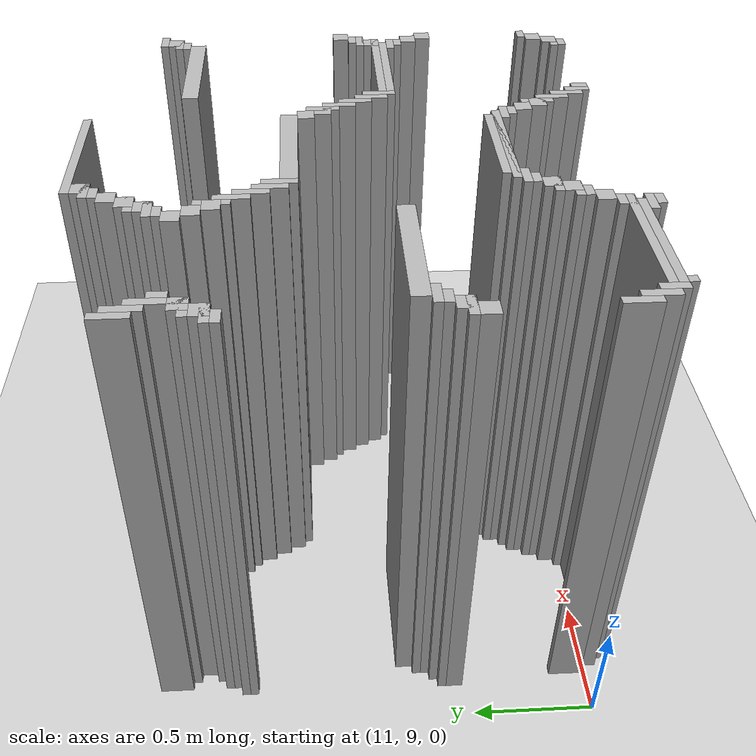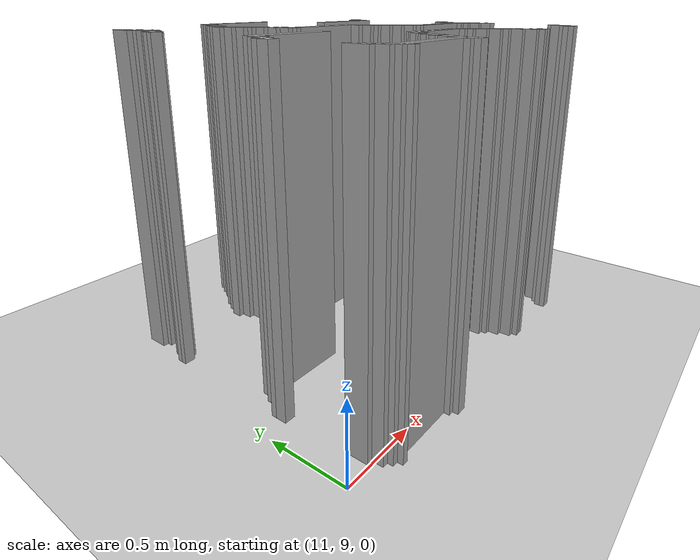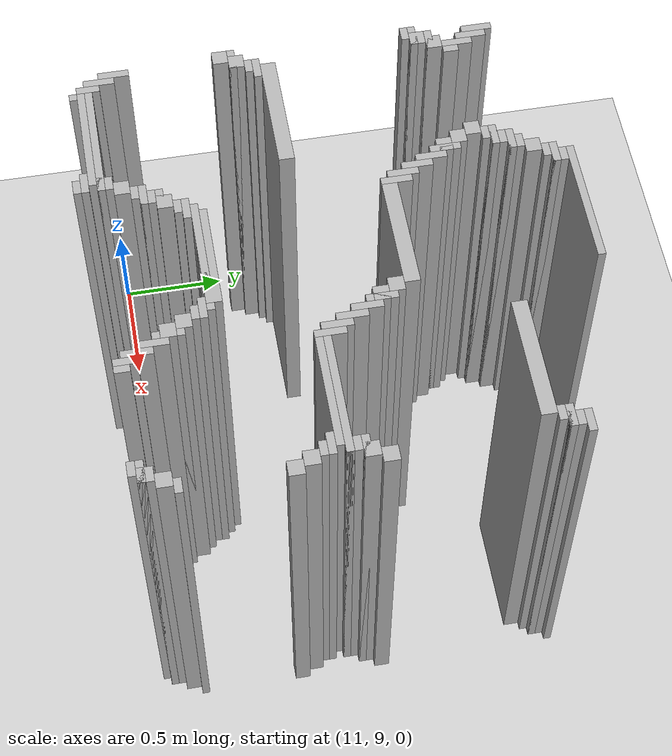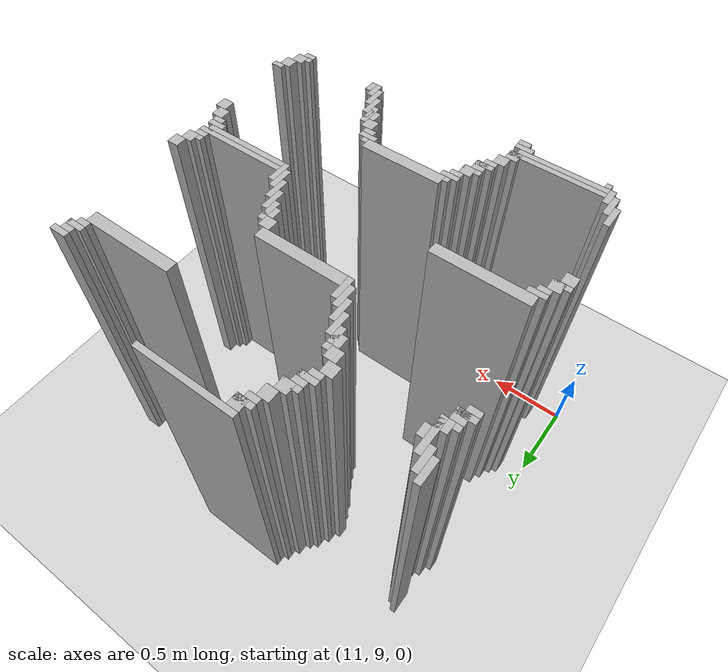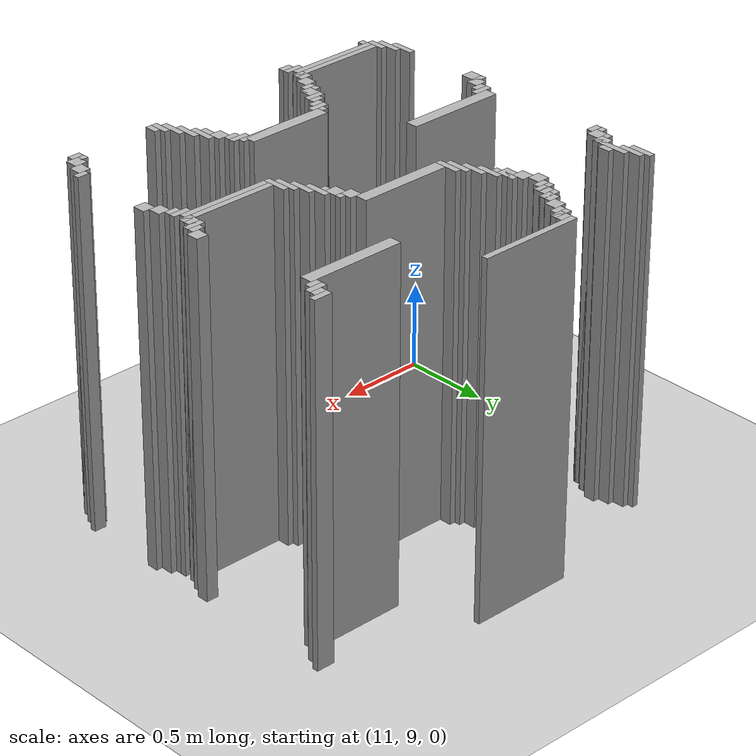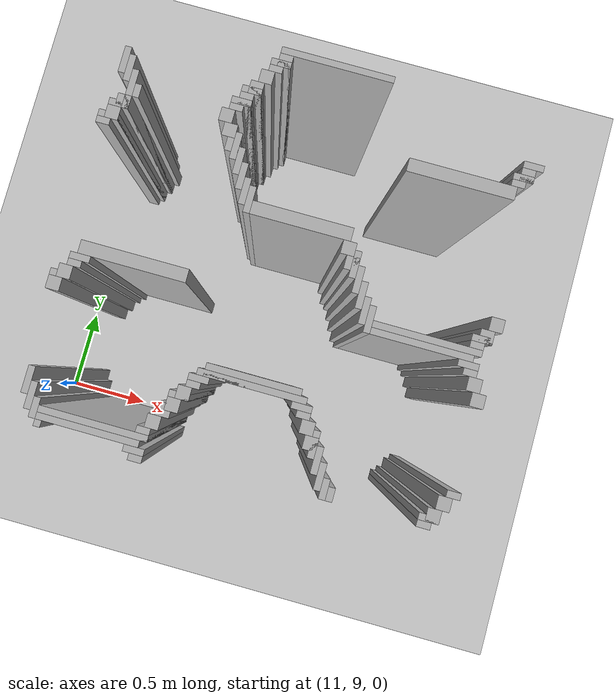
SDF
<sdf version="1.6">
 <world name="slam_world">
  <model name="ground_plane">
   <static>true</static>
   <link name="link">
    <collision name="collision">
     <geometry><plane><normal>0 0 1</normal><size>100 100</size></plane></geometry>
    </collision>
    <visual name="visual">
     <geometry><plane><normal>0 0 1</normal><size>100 100</size></plane></geometry>
     <material>
      <ambient>0.8 0.8 0.8 1</ambient>
      <diffuse>0.8 0.8 0.8 1</diffuse>
      <specular>0.8 0.8 0.8 1</specular>
     </material>
    </visual>
   </link>
  </model>
  <model name="wall_2194">
   <static>true</static>
   <pose>12.233178654292344 11.01508120649652 1.0 0 0 0</pose>
   <link name="link">
    <collision name="collision">
     <geometry><box><size>0.5916473317865429 0.03480278422273782 2.0</size></box></geometry>
    </collision>
    <visual name="visual">
     <geometry><box><size>0.5916473317865429 0.03480278422273782 2.0</size></box></geometry>
     <material><ambient>0.5 0.5 0.5 1</ambient><diffuse>0.7 0.7 0.7 1</diffuse></material>
    </visual>
   </link>
  </model>
  <model name="wall_2206">
   <static>true</static>
   <pose>11.97215777262181 10.962877030162412 1.0 0 0 0</pose>
   <link name="link">
    <collision name="collision">
     <geometry><box><size>0.06960556844547564 0.06960556844547564 2.0</size></box></geometry>
    </collision>
    <visual name="visual">
     <geometry><box><size>0.06960556844547564 0.06960556844547564 2.0</size></box></geometry>
     <material><ambient>0.5 0.5 0.5 1</ambient><diffuse>0.7 0.7 0.7 1</diffuse></material>
    </visual>
   </link>
  </model>
  <model name="wall_2218">
   <static>true</static>
   <pose>11.95475638051044 10.945475638051043 1.0 0 0 0</pose>
   <link name="link">
    <collision name="collision">
     <geometry><box><size>0.10440835266821345 0.03480278422273782 2.0</size></box></geometry>
    </collision>
    <visual name="visual">
     <geometry><box><size>0.10440835266821345 0.03480278422273782 2.0</size></box></geometry>
     <material><ambient>0.5 0.5 0.5 1</ambient><diffuse>0.7 0.7 0.7 1</diffuse></material>
    </visual>
   </link>
  </model>
  <model name="wall_2225">
   <static>true</static>
   <pose>11.937354988399072 10.910672853828306 1.0 0 0 0</pose>
   <link name="link">
    <collision name="collision">
     <geometry><box><size>0.06960556844547564 0.03480278422273782 2.0</size></box></geometry>
    </collision>
    <visual name="visual">
     <geometry><box><size>0.06960556844547564 0.03480278422273782 2.0</size></box></geometry>
     <material><ambient>0.5 0.5 0.5 1</ambient><diffuse>0.7 0.7 0.7 1</diffuse></material>
    </visual>
   </link>
  </model>
  <model name="wall_2237">
   <static>true</static>
   <pose>11.902552204176333 10.8584686774942 1.0 0 0 0</pose>
   <link name="link">
    <collision name="collision">
     <geometry><box><size>0.06960556844547564 0.06960556844547564 2.0</size></box></geometry>
    </collision>
    <visual name="visual">
     <geometry><box><size>0.06960556844547564 0.06960556844547564 2.0</size></box></geometry>
     <material><ambient>0.5 0.5 0.5 1</ambient><diffuse>0.7 0.7 0.7 1</diffuse></material>
    </visual>
   </link>
  </model>
  <model name="wall_2248">
   <static>true</static>
   <pose>11.189095127610209 10.754060324825986 1.0 0 0 0</pose>
   <link name="link">
    <collision name="collision">
     <geometry><box><size>0.03480278422273782 0.13921113689095127 2.0</size></box></geometry>
    </collision>
    <visual name="visual">
     <geometry><box><size>0.03480278422273782 0.13921113689095127 2.0</size></box></geometry>
     <material><ambient>0.5 0.5 0.5 1</ambient><diffuse>0.7 0.7 0.7 1</diffuse></material>
    </visual>
   </link>
  </model>
  <model name="wall_2249">
   <static>true</static>
   <pose>11.867749419953595 10.788863109048723 1.0 0 0 0</pose>
   <link name="link">
    <collision name="collision">
     <geometry><box><size>0.06960556844547564 0.06960556844547564 2.0</size></box></geometry>
    </collision>
    <visual name="visual">
     <geometry><box><size>0.06960556844547564 0.06960556844547564 2.0</size></box></geometry>
     <material><ambient>0.5 0.5 0.5 1</ambient><diffuse>0.7 0.7 0.7 1</diffuse></material>
    </visual>
   </link>
  </model>
  <model name="wall_2260">
   <static>true</static>
   <pose>11.223897911832946 10.719257540603248 1.0 0 0 0</pose>
   <link name="link">
    <collision name="collision">
     <geometry><box><size>0.03480278422273782 0.13921113689095127 2.0</size></box></geometry>
    </collision>
    <visual name="visual">
     <geometry><box><size>0.03480278422273782 0.13921113689095127 2.0</size></box></geometry>
     <material><ambient>0.5 0.5 0.5 1</ambient><diffuse>0.7 0.7 0.7 1</diffuse></material>
    </visual>
   </link>
  </model>
  <model name="wall_2261">
   <static>true</static>
   <pose>11.850348027842227 10.771461716937354 1.0 0 0 0</pose>
   <link name="link">
    <collision name="collision">
     <geometry><box><size>0.10440835266821345 0.03480278422273782 2.0</size></box></geometry>
    </collision>
    <visual name="visual">
     <geometry><box><size>0.10440835266821345 0.03480278422273782 2.0</size></box></geometry>
     <material><ambient>0.5 0.5 0.5 1</ambient><diffuse>0.7 0.7 0.7 1</diffuse></material>
    </visual>
   </link>
  </model>
  <model name="wall_2262">
   <static>true</static>
   <pose>13.312064965197216 10.771461716937354 1.0 0 0 0</pose>
   <link name="link">
    <collision name="collision">
     <geometry><box><size>0.10440835266821345 0.03480278422273782 2.0</size></box></geometry>
    </collision>
    <visual name="visual">
     <geometry><box><size>0.10440835266821345 0.03480278422273782 2.0</size></box></geometry>
     <material><ambient>0.5 0.5 0.5 1</ambient><diffuse>0.7 0.7 0.7 1</diffuse></material>
    </visual>
   </link>
  </model>
  <model name="wall_2267">
   <static>true</static>
   <pose>11.832946635730858 10.719257540603248 1.0 0 0 0</pose>
   <link name="link">
    <collision name="collision">
     <geometry><box><size>0.06960556844547564 0.06960556844547564 2.0</size></box></geometry>
    </collision>
    <visual name="visual">
     <geometry><box><size>0.06960556844547564 0.06960556844547564 2.0</size></box></geometry>
     <material><ambient>0.5 0.5 0.5 1</ambient><diffuse>0.7 0.7 0.7 1</diffuse></material>
    </visual>
   </link>
  </model>
  <model name="wall_2268">
   <static>true</static>
   <pose>13.294663573085847 10.719257540603248 1.0 0 0 0</pose>
   <link name="link">
    <collision name="collision">
     <geometry><box><size>0.06960556844547564 0.06960556844547564 2.0</size></box></geometry>
    </collision>
    <visual name="visual">
     <geometry><box><size>0.06960556844547564 0.06960556844547564 2.0</size></box></geometry>
     <material><ambient>0.5 0.5 0.5 1</ambient><diffuse>0.7 0.7 0.7 1</diffuse></material>
    </visual>
   </link>
  </model>
  <model name="wall_2278">
   <static>true</static>
   <pose>11.258700696055683 10.614849187935034 1.0 0 0 0</pose>
   <link name="link">
    <collision name="collision">
     <geometry><box><size>0.03480278422273782 0.2088167053364269 2.0</size></box></geometry>
    </collision>
    <visual name="visual">
     <geometry><box><size>0.03480278422273782 0.2088167053364269 2.0</size></box></geometry>
     <material><ambient>0.5 0.5 0.5 1</ambient><diffuse>0.7 0.7 0.7 1</diffuse></material>
    </visual>
   </link>
  </model>
  <model name="wall_2279">
   <static>true</static>
   <pose>11.81554524361949 10.70185614849188 1.0 0 0 0</pose>
   <link name="link">
    <collision name="collision">
     <geometry><box><size>0.10440835266821345 0.03480278422273782 2.0</size></box></geometry>
    </collision>
    <visual name="visual">
     <geometry><box><size>0.10440835266821345 0.03480278422273782 2.0</size></box></geometry>
     <material><ambient>0.5 0.5 0.5 1</ambient><diffuse>0.7 0.7 0.7 1</diffuse></material>
    </visual>
   </link>
  </model>
  <model name="wall_2280">
   <static>true</static>
   <pose>13.277262180974477 10.70185614849188 1.0 0 0 0</pose>
   <link name="link">
    <collision name="collision">
     <geometry><box><size>0.10440835266821345 0.03480278422273782 2.0</size></box></geometry>
    </collision>
    <visual name="visual">
     <geometry><box><size>0.10440835266821345 0.03480278422273782 2.0</size></box></geometry>
     <material><ambient>0.5 0.5 0.5 1</ambient><diffuse>0.7 0.7 0.7 1</diffuse></material>
    </visual>
   </link>
  </model>
  <model name="wall_2285">
   <static>true</static>
   <pose>11.79814385150812 10.66705336426914 1.0 0 0 0</pose>
   <link name="link">
    <collision name="collision">
     <geometry><box><size>0.06960556844547564 0.03480278422273782 2.0</size></box></geometry>
    </collision>
    <visual name="visual">
     <geometry><box><size>0.06960556844547564 0.03480278422273782 2.0</size></box></geometry>
     <material><ambient>0.5 0.5 0.5 1</ambient><diffuse>0.7 0.7 0.7 1</diffuse></material>
    </visual>
   </link>
  </model>
  <model name="wall_2286">
   <static>true</static>
   <pose>13.259860788863108 10.66705336426914 1.0 0 0 0</pose>
   <link name="link">
    <collision name="collision">
     <geometry><box><size>0.06960556844547564 0.03480278422273782 2.0</size></box></geometry>
    </collision>
    <visual name="visual">
     <geometry><box><size>0.06960556844547564 0.03480278422273782 2.0</size></box></geometry>
     <material><ambient>0.5 0.5 0.5 1</ambient><diffuse>0.7 0.7 0.7 1</diffuse></material>
    </visual>
   </link>
  </model>
  <model name="wall_2297">
   <static>true</static>
   <pose>11.293503480278423 10.614849187935034 1.0 0 0 0</pose>
   <link name="link">
    <collision name="collision">
     <geometry><box><size>0.03480278422273782 0.06960556844547564 2.0</size></box></geometry>
    </collision>
    <visual name="visual">
     <geometry><box><size>0.03480278422273782 0.06960556844547564 2.0</size></box></geometry>
     <material><ambient>0.5 0.5 0.5 1</ambient><diffuse>0.7 0.7 0.7 1</diffuse></material>
    </visual>
   </link>
  </model>
  <model name="wall_2298">
   <static>true</static>
   <pose>11.763341067285383 10.614849187935034 1.0 0 0 0</pose>
   <link name="link">
    <collision name="collision">
     <geometry><box><size>0.06960556844547564 0.06960556844547564 2.0</size></box></geometry>
    </collision>
    <visual name="visual">
     <geometry><box><size>0.06960556844547564 0.06960556844547564 2.0</size></box></geometry>
     <material><ambient>0.5 0.5 0.5 1</ambient><diffuse>0.7 0.7 0.7 1</diffuse></material>
    </visual>
   </link>
  </model>
  <model name="wall_2299">
   <static>true</static>
   <pose>12.981438515081207 10.614849187935034 1.0 0 0 0</pose>
   <link name="link">
    <collision name="collision">
     <geometry><box><size>0.5568445475638051 0.06960556844547564 2.0</size></box></geometry>
    </collision>
    <visual name="visual">
     <geometry><box><size>0.5568445475638051 0.06960556844547564 2.0</size></box></geometry>
     <material><ambient>0.5 0.5 0.5 1</ambient><diffuse>0.7 0.7 0.7 1</diffuse></material>
    </visual>
   </link>
  </model>
  <model name="wall_2309">
   <static>true</static>
   <pose>11.241299303944315 10.54524361948956 1.0 0 0 0</pose>
   <link name="link">
    <collision name="collision">
     <geometry><box><size>0.06960556844547564 0.06960556844547564 2.0</size></box></geometry>
    </collision>
    <visual name="visual">
     <geometry><box><size>0.06960556844547564 0.06960556844547564 2.0</size></box></geometry>
     <material><ambient>0.5 0.5 0.5 1</ambient><diffuse>0.7 0.7 0.7 1</diffuse></material>
    </visual>
   </link>
  </model>
  <model name="wall_2310">
   <static>true</static>
   <pose>11.79814385150812 10.54524361948956 1.0 0 0 0</pose>
   <link name="link">
    <collision name="collision">
     <geometry><box><size>0.06960556844547564 0.06960556844547564 2.0</size></box></geometry>
    </collision>
    <visual name="visual">
     <geometry><box><size>0.06960556844547564 0.06960556844547564 2.0</size></box></geometry>
     <material><ambient>0.5 0.5 0.5 1</ambient><diffuse>0.7 0.7 0.7 1</diffuse></material>
    </visual>
   </link>
  </model>
  <model name="wall_2320">
   <static>true</static>
   <pose>11.223897911832946 10.52784222737819 1.0 0 0 0</pose>
   <link name="link">
    <collision name="collision">
     <geometry><box><size>0.10440835266821345 0.03480278422273782 2.0</size></box></geometry>
    </collision>
    <visual name="visual">
     <geometry><box><size>0.10440835266821345 0.03480278422273782 2.0</size></box></geometry>
     <material><ambient>0.5 0.5 0.5 1</ambient><diffuse>0.7 0.7 0.7 1</diffuse></material>
    </visual>
   </link>
  </model>
  <model name="wall_2321">
   <static>true</static>
   <pose>11.850348027842227 10.475638051044083 1.0 0 0 0</pose>
   <link name="link">
    <collision name="collision">
     <geometry><box><size>0.03480278422273782 0.13921113689095127 2.0</size></box></geometry>
    </collision>
    <visual name="visual">
     <geometry><box><size>0.03480278422273782 0.13921113689095127 2.0</size></box></geometry>
     <material><ambient>0.5 0.5 0.5 1</ambient><diffuse>0.7 0.7 0.7 1</diffuse></material>
    </visual>
   </link>
  </model>
  <model name="wall_2331">
   <static>true</static>
   <pose>11.206496519721577 10.475638051044083 1.0 0 0 0</pose>
   <link name="link">
    <collision name="collision">
     <geometry><box><size>0.06960556844547564 0.06960556844547564 2.0</size></box></geometry>
    </collision>
    <visual name="visual">
     <geometry><box><size>0.06960556844547564 0.06960556844547564 2.0</size></box></geometry>
     <material><ambient>0.5 0.5 0.5 1</ambient><diffuse>0.7 0.7 0.7 1</diffuse></material>
    </visual>
   </link>
  </model>
  <model name="wall_2332">
   <static>true</static>
   <pose>11.832946635730858 10.475638051044083 1.0 0 0 0</pose>
   <link name="link">
    <collision name="collision">
     <geometry><box><size>0.06960556844547564 0.06960556844547564 2.0</size></box></geometry>
    </collision>
    <visual name="visual">
     <geometry><box><size>0.06960556844547564 0.06960556844547564 2.0</size></box></geometry>
     <material><ambient>0.5 0.5 0.5 1</ambient><diffuse>0.7 0.7 0.7 1</diffuse></material>
    </visual>
   </link>
  </model>
  <model name="wall_2342">
   <static>true</static>
   <pose>11.189095127610209 10.458236658932714 1.0 0 0 0</pose>
   <link name="link">
    <collision name="collision">
     <geometry><box><size>0.10440835266821345 0.03480278422273782 2.0</size></box></geometry>
    </collision>
    <visual name="visual">
     <geometry><box><size>0.10440835266821345 0.03480278422273782 2.0</size></box></geometry>
     <material><ambient>0.5 0.5 0.5 1</ambient><diffuse>0.7 0.7 0.7 1</diffuse></material>
    </visual>
   </link>
  </model>
  <model name="wall_2343">
   <static>true</static>
   <pose>11.885150812064964 10.406032482598608 1.0 0 0 0</pose>
   <link name="link">
    <collision name="collision">
     <geometry><box><size>0.03480278422273782 0.13921113689095127 2.0</size></box></geometry>
    </collision>
    <visual name="visual">
     <geometry><box><size>0.03480278422273782 0.13921113689095127 2.0</size></box></geometry>
     <material><ambient>0.5 0.5 0.5 1</ambient><diffuse>0.7 0.7 0.7 1</diffuse></material>
    </visual>
   </link>
  </model>
  <model name="wall_2349">
   <static>true</static>
   <pose>11.17169373549884 10.423433874709977 1.0 0 0 0</pose>
   <link name="link">
    <collision name="collision">
     <geometry><box><size>0.06960556844547564 0.03480278422273782 2.0</size></box></geometry>
    </collision>
    <visual name="visual">
     <geometry><box><size>0.06960556844547564 0.03480278422273782 2.0</size></box></geometry>
     <material><ambient>0.5 0.5 0.5 1</ambient><diffuse>0.7 0.7 0.7 1</diffuse></material>
    </visual>
   </link>
  </model>
  <model name="wall_2359">
   <static>true</static>
   <pose>11.919953596287703 10.336426914153131 1.0 0 0 0</pose>
   <link name="link">
    <collision name="collision">
     <geometry><box><size>0.03480278422273782 0.13921113689095127 2.0</size></box></geometry>
    </collision>
    <visual name="visual">
     <geometry><box><size>0.03480278422273782 0.13921113689095127 2.0</size></box></geometry>
     <material><ambient>0.5 0.5 0.5 1</ambient><diffuse>0.7 0.7 0.7 1</diffuse></material>
    </visual>
   </link>
  </model>
  <model name="wall_2370">
   <static>true</static>
   <pose>11.95475638051044 10.266821345707656 1.0 0 0 0</pose>
   <link name="link">
    <collision name="collision">
     <geometry><box><size>0.03480278422273782 0.13921113689095127 2.0</size></box></geometry>
    </collision>
    <visual name="visual">
     <geometry><box><size>0.03480278422273782 0.13921113689095127 2.0</size></box></geometry>
     <material><ambient>0.5 0.5 0.5 1</ambient><diffuse>0.7 0.7 0.7 1</diffuse></material>
    </visual>
   </link>
  </model>
  <model name="wall_2381">
   <static>true</static>
   <pose>11.989559164733178 10.232018561484919 1.0 0 0 0</pose>
   <link name="link">
    <collision name="collision">
     <geometry><box><size>0.03480278422273782 0.13921113689095127 2.0</size></box></geometry>
    </collision>
    <visual name="visual">
     <geometry><box><size>0.03480278422273782 0.13921113689095127 2.0</size></box></geometry>
     <material><ambient>0.5 0.5 0.5 1</ambient><diffuse>0.7 0.7 0.7 1</diffuse></material>
    </visual>
   </link>
  </model>
  <model name="wall_2397">
   <static>true</static>
   <pose>12.267981438515081 10.19721577726218 1.0 0 0 0</pose>
   <link name="link">
    <collision name="collision">
     <geometry><box><size>0.5220417633410672 0.06960556844547564 2.0</size></box></geometry>
    </collision>
    <visual name="visual">
     <geometry><box><size>0.5220417633410672 0.06960556844547564 2.0</size></box></geometry>
     <material><ambient>0.5 0.5 0.5 1</ambient><diffuse>0.7 0.7 0.7 1</diffuse></material>
    </visual>
   </link>
  </model>
  <model name="wall_2415">
   <static>true</static>
   <pose>12.529002320185615 10.127610208816705 1.0 0 0 0</pose>
   <link name="link">
    <collision name="collision">
     <geometry><box><size>0.06960556844547564 0.06960556844547564 2.0</size></box></geometry>
    </collision>
    <visual name="visual">
     <geometry><box><size>0.06960556844547564 0.06960556844547564 2.0</size></box></geometry>
     <material><ambient>0.5 0.5 0.5 1</ambient><diffuse>0.7 0.7 0.7 1</diffuse></material>
    </visual>
   </link>
  </model>
  <model name="wall_2429">
   <static>true</static>
   <pose>12.581206496519721 10.058004640371228 1.0 0 0 0</pose>
   <link name="link">
    <collision name="collision">
     <geometry><box><size>0.03480278422273782 0.13921113689095127 2.0</size></box></geometry>
    </collision>
    <visual name="visual">
     <geometry><box><size>0.03480278422273782 0.13921113689095127 2.0</size></box></geometry>
     <material><ambient>0.5 0.5 0.5 1</ambient><diffuse>0.7 0.7 0.7 1</diffuse></material>
    </visual>
   </link>
  </model>
  <model name="wall_2443">
   <static>true</static>
   <pose>12.563805104408353 10.058004640371228 1.0 0 0 0</pose>
   <link name="link">
    <collision name="collision">
     <geometry><box><size>0.06960556844547564 0.06960556844547564 2.0</size></box></geometry>
    </collision>
    <visual name="visual">
     <geometry><box><size>0.06960556844547564 0.06960556844547564 2.0</size></box></geometry>
     <material><ambient>0.5 0.5 0.5 1</ambient><diffuse>0.7 0.7 0.7 1</diffuse></material>
    </visual>
   </link>
  </model>
  <model name="wall_2457">
   <static>true</static>
   <pose>12.616009280742459 9.988399071925754 1.0 0 0 0</pose>
   <link name="link">
    <collision name="collision">
     <geometry><box><size>0.03480278422273782 0.13921113689095127 2.0</size></box></geometry>
    </collision>
    <visual name="visual">
     <geometry><box><size>0.03480278422273782 0.13921113689095127 2.0</size></box></geometry>
     <material><ambient>0.5 0.5 0.5 1</ambient><diffuse>0.7 0.7 0.7 1</diffuse></material>
    </visual>
   </link>
  </model>
  <model name="wall_2479">
   <static>true</static>
   <pose>12.650812064965196 9.918793503480279 1.0 0 0 0</pose>
   <link name="link">
    <collision name="collision">
     <geometry><box><size>0.03480278422273782 0.13921113689095127 2.0</size></box></geometry>
    </collision>
    <visual name="visual">
     <geometry><box><size>0.03480278422273782 0.13921113689095127 2.0</size></box></geometry>
     <material><ambient>0.5 0.5 0.5 1</ambient><diffuse>0.7 0.7 0.7 1</diffuse></material>
    </visual>
   </link>
  </model>
  <model name="wall_2480">
   <static>true</static>
   <pose>13.329466357308585 9.953596287703016 1.0 0 0 0</pose>
   <link name="link">
    <collision name="collision">
     <geometry><box><size>0.06960556844547564 0.06960556844547564 2.0</size></box></geometry>
    </collision>
    <visual name="visual">
     <geometry><box><size>0.06960556844547564 0.06960556844547564 2.0</size></box></geometry>
     <material><ambient>0.5 0.5 0.5 1</ambient><diffuse>0.7 0.7 0.7 1</diffuse></material>
    </visual>
   </link>
  </model>
  <model name="wall_2493">
   <static>true</static>
   <pose>12.685614849187935 9.849187935034802 1.0 0 0 0</pose>
   <link name="link">
    <collision name="collision">
     <geometry><box><size>0.03480278422273782 0.13921113689095127 2.0</size></box></geometry>
    </collision>
    <visual name="visual">
     <geometry><box><size>0.03480278422273782 0.13921113689095127 2.0</size></box></geometry>
     <material><ambient>0.5 0.5 0.5 1</ambient><diffuse>0.7 0.7 0.7 1</diffuse></material>
    </visual>
   </link>
  </model>
  <model name="wall_2494">
   <static>true</static>
   <pose>13.294663573085847 9.88399071925754 1.0 0 0 0</pose>
   <link name="link">
    <collision name="collision">
     <geometry><box><size>0.06960556844547564 0.06960556844547564 2.0</size></box></geometry>
    </collision>
    <visual name="visual">
     <geometry><box><size>0.06960556844547564 0.06960556844547564 2.0</size></box></geometry>
     <material><ambient>0.5 0.5 0.5 1</ambient><diffuse>0.7 0.7 0.7 1</diffuse></material>
    </visual>
   </link>
  </model>
  <model name="wall_2507">
   <static>true</static>
   <pose>12.720417633410673 9.814385150812065 1.0 0 0 0</pose>
   <link name="link">
    <collision name="collision">
     <geometry><box><size>0.03480278422273782 0.13921113689095127 2.0</size></box></geometry>
    </collision>
    <visual name="visual">
     <geometry><box><size>0.03480278422273782 0.13921113689095127 2.0</size></box></geometry>
     <material><ambient>0.5 0.5 0.5 1</ambient><diffuse>0.7 0.7 0.7 1</diffuse></material>
    </visual>
   </link>
  </model>
  <model name="wall_2508">
   <static>true</static>
   <pose>13.277262180974477 9.86658932714617 1.0 0 0 0</pose>
   <link name="link">
    <collision name="collision">
     <geometry><box><size>0.10440835266821345 0.03480278422273782 2.0</size></box></geometry>
    </collision>
    <visual name="visual">
     <geometry><box><size>0.10440835266821345 0.03480278422273782 2.0</size></box></geometry>
     <material><ambient>0.5 0.5 0.5 1</ambient><diffuse>0.7 0.7 0.7 1</diffuse></material>
    </visual>
   </link>
  </model>
  <model name="wall_2517">
   <static>true</static>
   <pose>13.259860788863108 9.814385150812065 1.0 0 0 0</pose>
   <link name="link">
    <collision name="collision">
     <geometry><box><size>0.06960556844547564 0.06960556844547564 2.0</size></box></geometry>
    </collision>
    <visual name="visual">
     <geometry><box><size>0.06960556844547564 0.06960556844547564 2.0</size></box></geometry>
     <material><ambient>0.5 0.5 0.5 1</ambient><diffuse>0.7 0.7 0.7 1</diffuse></material>
    </visual>
   </link>
  </model>
  <model name="wall_2529">
   <static>true</static>
   <pose>11.519721577726218 9.779582366589327 1.0 0 0 0</pose>
   <link name="link">
    <collision name="collision">
     <geometry><box><size>0.5568445475638051 0.06960556844547564 2.0</size></box></geometry>
    </collision>
    <visual name="visual">
     <geometry><box><size>0.5568445475638051 0.06960556844547564 2.0</size></box></geometry>
     <material><ambient>0.5 0.5 0.5 1</ambient><diffuse>0.7 0.7 0.7 1</diffuse></material>
    </visual>
   </link>
  </model>
  <model name="wall_2530">
   <static>true</static>
   <pose>13.016241299303944 9.796983758700696 1.0 0 0 0</pose>
   <link name="link">
    <collision name="collision">
     <geometry><box><size>0.5568445475638051 0.03480278422273782 2.0</size></box></geometry>
    </collision>
    <visual name="visual">
     <geometry><box><size>0.5568445475638051 0.03480278422273782 2.0</size></box></geometry>
     <material><ambient>0.5 0.5 0.5 1</ambient><diffuse>0.7 0.7 0.7 1</diffuse></material>
    </visual>
   </link>
  </model>
  <model name="wall_2539">
   <static>true</static>
   <pose>12.998839907192576 9.762180974477959 1.0 0 0 0</pose>
   <link name="link">
    <collision name="collision">
     <geometry><box><size>0.5220417633410672 0.03480278422273782 2.0</size></box></geometry>
    </collision>
    <visual name="visual">
     <geometry><box><size>0.5220417633410672 0.03480278422273782 2.0</size></box></geometry>
     <material><ambient>0.5 0.5 0.5 1</ambient><diffuse>0.7 0.7 0.7 1</diffuse></material>
    </visual>
   </link>
  </model>
  <model name="wall_2549">
   <static>true</static>
   <pose>11.258700696055683 9.72737819025522 1.0 0 0 0</pose>
   <link name="link">
    <collision name="collision">
     <geometry><box><size>0.10440835266821345 0.03480278422273782 2.0</size></box></geometry>
    </collision>
    <visual name="visual">
     <geometry><box><size>0.10440835266821345 0.03480278422273782 2.0</size></box></geometry>
     <material><ambient>0.5 0.5 0.5 1</ambient><diffuse>0.7 0.7 0.7 1</diffuse></material>
    </visual>
   </link>
  </model>
  <model name="wall_2550">
   <static>true</static>
   <pose>13.24245939675174 9.72737819025522 1.0 0 0 0</pose>
   <link name="link">
    <collision name="collision">
     <geometry><box><size>0.10440835266821345 0.03480278422273782 2.0</size></box></geometry>
    </collision>
    <visual name="visual">
     <geometry><box><size>0.10440835266821345 0.03480278422273782 2.0</size></box></geometry>
     <material><ambient>0.5 0.5 0.5 1</ambient><diffuse>0.7 0.7 0.7 1</diffuse></material>
    </visual>
   </link>
  </model>
  <model name="wall_2556">
   <static>true</static>
   <pose>11.241299303944315 9.692575406032482 1.0 0 0 0</pose>
   <link name="link">
    <collision name="collision">
     <geometry><box><size>0.06960556844547564 0.03480278422273782 2.0</size></box></geometry>
    </collision>
    <visual name="visual">
     <geometry><box><size>0.06960556844547564 0.03480278422273782 2.0</size></box></geometry>
     <material><ambient>0.5 0.5 0.5 1</ambient><diffuse>0.7 0.7 0.7 1</diffuse></material>
    </visual>
   </link>
  </model>
  <model name="wall_2557">
   <static>true</static>
   <pose>13.259860788863108 9.692575406032482 1.0 0 0 0</pose>
   <link name="link">
    <collision name="collision">
     <geometry><box><size>0.06960556844547564 0.03480278422273782 2.0</size></box></geometry>
    </collision>
    <visual name="visual">
     <geometry><box><size>0.06960556844547564 0.03480278422273782 2.0</size></box></geometry>
     <material><ambient>0.5 0.5 0.5 1</ambient><diffuse>0.7 0.7 0.7 1</diffuse></material>
    </visual>
   </link>
  </model>
  <model name="wall_2566">
   <static>true</static>
   <pose>11.206496519721577 9.640371229698376 1.0 0 0 0</pose>
   <link name="link">
    <collision name="collision">
     <geometry><box><size>0.06960556844547564 0.06960556844547564 2.0</size></box></geometry>
    </collision>
    <visual name="visual">
     <geometry><box><size>0.06960556844547564 0.06960556844547564 2.0</size></box></geometry>
     <material><ambient>0.5 0.5 0.5 1</ambient><diffuse>0.7 0.7 0.7 1</diffuse></material>
    </visual>
   </link>
  </model>
  <model name="wall_2567">
   <static>true</static>
   <pose>13.294663573085847 9.640371229698376 1.0 0 0 0</pose>
   <link name="link">
    <collision name="collision">
     <geometry><box><size>0.06960556844547564 0.06960556844547564 2.0</size></box></geometry>
    </collision>
    <visual name="visual">
     <geometry><box><size>0.06960556844547564 0.06960556844547564 2.0</size></box></geometry>
     <material><ambient>0.5 0.5 0.5 1</ambient><diffuse>0.7 0.7 0.7 1</diffuse></material>
    </visual>
   </link>
  </model>
  <model name="wall_2577">
   <static>true</static>
   <pose>11.189095127610209 9.622969837587007 1.0 0 0 0</pose>
   <link name="link">
    <collision name="collision">
     <geometry><box><size>0.10440835266821345 0.03480278422273782 2.0</size></box></geometry>
    </collision>
    <visual name="visual">
     <geometry><box><size>0.10440835266821345 0.03480278422273782 2.0</size></box></geometry>
     <material><ambient>0.5 0.5 0.5 1</ambient><diffuse>0.7 0.7 0.7 1</diffuse></material>
    </visual>
   </link>
  </model>
  <model name="wall_2588">
   <static>true</static>
   <pose>11.17169373549884 9.5707656612529 1.0 0 0 0</pose>
   <link name="link">
    <collision name="collision">
     <geometry><box><size>0.06960556844547564 0.06960556844547564 2.0</size></box></geometry>
    </collision>
    <visual name="visual">
     <geometry><box><size>0.06960556844547564 0.06960556844547564 2.0</size></box></geometry>
     <material><ambient>0.5 0.5 0.5 1</ambient><diffuse>0.7 0.7 0.7 1</diffuse></material>
    </visual>
   </link>
  </model>
  <model name="wall_2589">
   <static>true</static>
   <pose>13.329466357308585 9.5707656612529 1.0 0 0 0</pose>
   <link name="link">
    <collision name="collision">
     <geometry><box><size>0.06960556844547564 0.06960556844547564 2.0</size></box></geometry>
    </collision>
    <visual name="visual">
     <geometry><box><size>0.06960556844547564 0.06960556844547564 2.0</size></box></geometry>
     <material><ambient>0.5 0.5 0.5 1</ambient><diffuse>0.7 0.7 0.7 1</diffuse></material>
    </visual>
   </link>
  </model>
  <model name="wall_2640">
   <static>true</static>
   <pose>12.250580046403712 9.361948955916473 1.0 0 0 0</pose>
   <link name="link">
    <collision name="collision">
     <geometry><box><size>0.4872389791183295 0.06960556844547564 2.0</size></box></geometry>
    </collision>
    <visual name="visual">
     <geometry><box><size>0.4872389791183295 0.06960556844547564 2.0</size></box></geometry>
     <material><ambient>0.5 0.5 0.5 1</ambient><diffuse>0.7 0.7 0.7 1</diffuse></material>
    </visual>
   </link>
  </model>
  <model name="wall_2651">
   <static>true</static>
   <pose>12.250580046403712 9.344547563805104 1.0 0 0 0</pose>
   <link name="link">
    <collision name="collision">
     <geometry><box><size>0.5568445475638051 0.03480278422273782 2.0</size></box></geometry>
    </collision>
    <visual name="visual">
     <geometry><box><size>0.5568445475638051 0.03480278422273782 2.0</size></box></geometry>
     <material><ambient>0.5 0.5 0.5 1</ambient><diffuse>0.7 0.7 0.7 1</diffuse></material>
    </visual>
   </link>
  </model>
  <model name="wall_2667">
   <static>true</static>
   <pose>11.989559164733178 9.309744779582367 1.0 0 0 0</pose>
   <link name="link">
    <collision name="collision">
     <geometry><box><size>0.10440835266821345 0.03480278422273782 2.0</size></box></geometry>
    </collision>
    <visual name="visual">
     <geometry><box><size>0.10440835266821345 0.03480278422273782 2.0</size></box></geometry>
     <material><ambient>0.5 0.5 0.5 1</ambient><diffuse>0.7 0.7 0.7 1</diffuse></material>
    </visual>
   </link>
  </model>
  <model name="wall_2668">
   <static>true</static>
   <pose>12.511600928074245 9.309744779582367 1.0 0 0 0</pose>
   <link name="link">
    <collision name="collision">
     <geometry><box><size>0.10440835266821345 0.03480278422273782 2.0</size></box></geometry>
    </collision>
    <visual name="visual">
     <geometry><box><size>0.10440835266821345 0.03480278422273782 2.0</size></box></geometry>
     <material><ambient>0.5 0.5 0.5 1</ambient><diffuse>0.7 0.7 0.7 1</diffuse></material>
    </visual>
   </link>
  </model>
  <model name="wall_2686">
   <static>true</static>
   <pose>11.97215777262181 9.274941995359628 1.0 0 0 0</pose>
   <link name="link">
    <collision name="collision">
     <geometry><box><size>0.06960556844547564 0.03480278422273782 2.0</size></box></geometry>
    </collision>
    <visual name="visual">
     <geometry><box><size>0.06960556844547564 0.03480278422273782 2.0</size></box></geometry>
     <material><ambient>0.5 0.5 0.5 1</ambient><diffuse>0.7 0.7 0.7 1</diffuse></material>
    </visual>
   </link>
  </model>
  <model name="wall_2687">
   <static>true</static>
   <pose>12.529002320185615 9.274941995359628 1.0 0 0 0</pose>
   <link name="link">
    <collision name="collision">
     <geometry><box><size>0.06960556844547564 0.03480278422273782 2.0</size></box></geometry>
    </collision>
    <visual name="visual">
     <geometry><box><size>0.06960556844547564 0.03480278422273782 2.0</size></box></geometry>
     <material><ambient>0.5 0.5 0.5 1</ambient><diffuse>0.7 0.7 0.7 1</diffuse></material>
    </visual>
   </link>
  </model>
  <model name="wall_2704">
   <static>true</static>
   <pose>11.937354988399072 9.222737819025522 1.0 0 0 0</pose>
   <link name="link">
    <collision name="collision">
     <geometry><box><size>0.06960556844547564 0.06960556844547564 2.0</size></box></geometry>
    </collision>
    <visual name="visual">
     <geometry><box><size>0.06960556844547564 0.06960556844547564 2.0</size></box></geometry>
     <material><ambient>0.5 0.5 0.5 1</ambient><diffuse>0.7 0.7 0.7 1</diffuse></material>
    </visual>
   </link>
  </model>
  <model name="wall_2705">
   <static>true</static>
   <pose>12.563805104408353 9.222737819025522 1.0 0 0 0</pose>
   <link name="link">
    <collision name="collision">
     <geometry><box><size>0.06960556844547564 0.06960556844547564 2.0</size></box></geometry>
    </collision>
    <visual name="visual">
     <geometry><box><size>0.06960556844547564 0.06960556844547564 2.0</size></box></geometry>
     <material><ambient>0.5 0.5 0.5 1</ambient><diffuse>0.7 0.7 0.7 1</diffuse></material>
    </visual>
   </link>
  </model>
  <model name="wall_2723">
   <static>true</static>
   <pose>11.919953596287703 9.205336426914153 1.0 0 0 0</pose>
   <link name="link">
    <collision name="collision">
     <geometry><box><size>0.10440835266821345 0.03480278422273782 2.0</size></box></geometry>
    </collision>
    <visual name="visual">
     <geometry><box><size>0.10440835266821345 0.03480278422273782 2.0</size></box></geometry>
     <material><ambient>0.5 0.5 0.5 1</ambient><diffuse>0.7 0.7 0.7 1</diffuse></material>
    </visual>
   </link>
  </model>
  <model name="wall_2724">
   <static>true</static>
   <pose>12.616009280742459 9.153132250580047 1.0 0 0 0</pose>
   <link name="link">
    <collision name="collision">
     <geometry><box><size>0.03480278422273782 0.13921113689095127 2.0</size></box></geometry>
    </collision>
    <visual name="visual">
     <geometry><box><size>0.03480278422273782 0.13921113689095127 2.0</size></box></geometry>
     <material><ambient>0.5 0.5 0.5 1</ambient><diffuse>0.7 0.7 0.7 1</diffuse></material>
    </visual>
   </link>
  </model>
  <model name="wall_2739">
   <static>true</static>
   <pose>11.902552204176333 9.153132250580047 1.0 0 0 0</pose>
   <link name="link">
    <collision name="collision">
     <geometry><box><size>0.06960556844547564 0.06960556844547564 2.0</size></box></geometry>
    </collision>
    <visual name="visual">
     <geometry><box><size>0.06960556844547564 0.06960556844547564 2.0</size></box></geometry>
     <material><ambient>0.5 0.5 0.5 1</ambient><diffuse>0.7 0.7 0.7 1</diffuse></material>
    </visual>
   </link>
  </model>
  <model name="wall_2740">
   <static>true</static>
   <pose>12.59860788863109 9.153132250580047 1.0 0 0 0</pose>
   <link name="link">
    <collision name="collision">
     <geometry><box><size>0.06960556844547564 0.06960556844547564 2.0</size></box></geometry>
    </collision>
    <visual name="visual">
     <geometry><box><size>0.06960556844547564 0.06960556844547564 2.0</size></box></geometry>
     <material><ambient>0.5 0.5 0.5 1</ambient><diffuse>0.7 0.7 0.7 1</diffuse></material>
    </visual>
   </link>
  </model>
  <model name="wall_2756">
   <static>true</static>
   <pose>11.189095127610209 9.08352668213457 1.0 0 0 0</pose>
   <link name="link">
    <collision name="collision">
     <geometry><box><size>0.03480278422273782 0.13921113689095127 2.0</size></box></geometry>
    </collision>
    <visual name="visual">
     <geometry><box><size>0.03480278422273782 0.13921113689095127 2.0</size></box></geometry>
     <material><ambient>0.5 0.5 0.5 1</ambient><diffuse>0.7 0.7 0.7 1</diffuse></material>
    </visual>
   </link>
  </model>
  <model name="wall_2757">
   <static>true</static>
   <pose>11.885150812064964 9.135730858468676 1.0 0 0 0</pose>
   <link name="link">
    <collision name="collision">
     <geometry><box><size>0.10440835266821345 0.03480278422273782 2.0</size></box></geometry>
    </collision>
    <visual name="visual">
     <geometry><box><size>0.10440835266821345 0.03480278422273782 2.0</size></box></geometry>
     <material><ambient>0.5 0.5 0.5 1</ambient><diffuse>0.7 0.7 0.7 1</diffuse></material>
    </visual>
   </link>
  </model>
  <model name="wall_2758">
   <static>true</static>
   <pose>12.650812064965196 9.08352668213457 1.0 0 0 0</pose>
   <link name="link">
    <collision name="collision">
     <geometry><box><size>0.03480278422273782 0.13921113689095127 2.0</size></box></geometry>
    </collision>
    <visual name="visual">
     <geometry><box><size>0.03480278422273782 0.13921113689095127 2.0</size></box></geometry>
     <material><ambient>0.5 0.5 0.5 1</ambient><diffuse>0.7 0.7 0.7 1</diffuse></material>
    </visual>
   </link>
  </model>
  <model name="wall_2769">
   <static>true</static>
   <pose>11.867749419953595 9.100928074245939 1.0 0 0 0</pose>
   <link name="link">
    <collision name="collision">
     <geometry><box><size>0.06960556844547564 0.03480278422273782 2.0</size></box></geometry>
    </collision>
    <visual name="visual">
     <geometry><box><size>0.06960556844547564 0.03480278422273782 2.0</size></box></geometry>
     <material><ambient>0.5 0.5 0.5 1</ambient><diffuse>0.7 0.7 0.7 1</diffuse></material>
    </visual>
   </link>
  </model>
  <model name="wall_2770">
   <static>true</static>
   <pose>13.329466357308585 9.100928074245939 1.0 0 0 0</pose>
   <link name="link">
    <collision name="collision">
     <geometry><box><size>0.06960556844547564 0.03480278422273782 2.0</size></box></geometry>
    </collision>
    <visual name="visual">
     <geometry><box><size>0.06960556844547564 0.03480278422273782 2.0</size></box></geometry>
     <material><ambient>0.5 0.5 0.5 1</ambient><diffuse>0.7 0.7 0.7 1</diffuse></material>
    </visual>
   </link>
  </model>
  <model name="wall_2785">
   <static>true</static>
   <pose>11.223897911832946 9.013921113689095 1.0 0 0 0</pose>
   <link name="link">
    <collision name="collision">
     <geometry><box><size>0.03480278422273782 0.13921113689095127 2.0</size></box></geometry>
    </collision>
    <visual name="visual">
     <geometry><box><size>0.03480278422273782 0.13921113689095127 2.0</size></box></geometry>
     <material><ambient>0.5 0.5 0.5 1</ambient><diffuse>0.7 0.7 0.7 1</diffuse></material>
    </visual>
   </link>
  </model>
  <model name="wall_2786">
   <static>true</static>
   <pose>11.832946635730858 9.048723897911833 1.0 0 0 0</pose>
   <link name="link">
    <collision name="collision">
     <geometry><box><size>0.06960556844547564 0.06960556844547564 2.0</size></box></geometry>
    </collision>
    <visual name="visual">
     <geometry><box><size>0.06960556844547564 0.06960556844547564 2.0</size></box></geometry>
     <material><ambient>0.5 0.5 0.5 1</ambient><diffuse>0.7 0.7 0.7 1</diffuse></material>
    </visual>
   </link>
  </model>
  <model name="wall_2787">
   <static>true</static>
   <pose>12.685614849187935 9.013921113689095 1.0 0 0 0</pose>
   <link name="link">
    <collision name="collision">
     <geometry><box><size>0.03480278422273782 0.13921113689095127 2.0</size></box></geometry>
    </collision>
    <visual name="visual">
     <geometry><box><size>0.03480278422273782 0.13921113689095127 2.0</size></box></geometry>
     <material><ambient>0.5 0.5 0.5 1</ambient><diffuse>0.7 0.7 0.7 1</diffuse></material>
    </visual>
   </link>
  </model>
  <model name="wall_2788">
   <static>true</static>
   <pose>13.294663573085847 9.048723897911833 1.0 0 0 0</pose>
   <link name="link">
    <collision name="collision">
     <geometry><box><size>0.06960556844547564 0.06960556844547564 2.0</size></box></geometry>
    </collision>
    <visual name="visual">
     <geometry><box><size>0.06960556844547564 0.06960556844547564 2.0</size></box></geometry>
     <material><ambient>0.5 0.5 0.5 1</ambient><diffuse>0.7 0.7 0.7 1</diffuse></material>
    </visual>
   </link>
  </model>
  <model name="wall_2804">
   <static>true</static>
   <pose>11.258700696055683 8.961716937354987 1.0 0 0 0</pose>
   <link name="link">
    <collision name="collision">
     <geometry><box><size>0.03480278422273782 0.10440835266821345 2.0</size></box></geometry>
    </collision>
    <visual name="visual">
     <geometry><box><size>0.03480278422273782 0.10440835266821345 2.0</size></box></geometry>
     <material><ambient>0.5 0.5 0.5 1</ambient><diffuse>0.7 0.7 0.7 1</diffuse></material>
    </visual>
   </link>
  </model>
  <model name="wall_2805">
   <static>true</static>
   <pose>11.79814385150812 8.979118329466356 1.0 0 0 0</pose>
   <link name="link">
    <collision name="collision">
     <geometry><box><size>0.06960556844547564 0.06960556844547564 2.0</size></box></geometry>
    </collision>
    <visual name="visual">
     <geometry><box><size>0.06960556844547564 0.06960556844547564 2.0</size></box></geometry>
     <material><ambient>0.5 0.5 0.5 1</ambient><diffuse>0.7 0.7 0.7 1</diffuse></material>
    </visual>
   </link>
  </model>
  <model name="wall_2806">
   <static>true</static>
   <pose>12.720417633410673 8.961716937354987 1.0 0 0 0</pose>
   <link name="link">
    <collision name="collision">
     <geometry><box><size>0.03480278422273782 0.10440835266821345 2.0</size></box></geometry>
    </collision>
    <visual name="visual">
     <geometry><box><size>0.03480278422273782 0.10440835266821345 2.0</size></box></geometry>
     <material><ambient>0.5 0.5 0.5 1</ambient><diffuse>0.7 0.7 0.7 1</diffuse></material>
    </visual>
   </link>
  </model>
  <model name="wall_2807">
   <static>true</static>
   <pose>13.259860788863108 8.979118329466356 1.0 0 0 0</pose>
   <link name="link">
    <collision name="collision">
     <geometry><box><size>0.06960556844547564 0.06960556844547564 2.0</size></box></geometry>
    </collision>
    <visual name="visual">
     <geometry><box><size>0.06960556844547564 0.06960556844547564 2.0</size></box></geometry>
     <material><ambient>0.5 0.5 0.5 1</ambient><diffuse>0.7 0.7 0.7 1</diffuse></material>
    </visual>
   </link>
  </model>
  <model name="wall_2822">
   <static>true</static>
   <pose>11.554524361948955 8.961716937354987 1.0 0 0 0</pose>
   <link name="link">
    <collision name="collision">
     <geometry><box><size>0.5568445475638051 0.03480278422273782 2.0</size></box></geometry>
    </collision>
    <visual name="visual">
     <geometry><box><size>0.5568445475638051 0.03480278422273782 2.0</size></box></geometry>
     <material><ambient>0.5 0.5 0.5 1</ambient><diffuse>0.7 0.7 0.7 1</diffuse></material>
    </visual>
   </link>
  </model>
  <model name="wall_2823">
   <static>true</static>
   <pose>12.75522041763341 8.944315545243619 1.0 0 0 0</pose>
   <link name="link">
    <collision name="collision">
     <geometry><box><size>0.03480278422273782 0.06960556844547564 2.0</size></box></geometry>
    </collision>
    <visual name="visual">
     <geometry><box><size>0.03480278422273782 0.06960556844547564 2.0</size></box></geometry>
     <material><ambient>0.5 0.5 0.5 1</ambient><diffuse>0.7 0.7 0.7 1</diffuse></material>
    </visual>
   </link>
  </model>
  <model name="wall_2824">
   <static>true</static>
   <pose>13.24245939675174 8.961716937354987 1.0 0 0 0</pose>
   <link name="link">
    <collision name="collision">
     <geometry><box><size>0.10440835266821345 0.03480278422273782 2.0</size></box></geometry>
    </collision>
    <visual name="visual">
     <geometry><box><size>0.10440835266821345 0.03480278422273782 2.0</size></box></geometry>
     <material><ambient>0.5 0.5 0.5 1</ambient><diffuse>0.7 0.7 0.7 1</diffuse></material>
    </visual>
   </link>
  </model>
  <model name="wall_2834">
   <static>true</static>
   <pose>11.537122969837586 8.92691415313225 1.0 0 0 0</pose>
   <link name="link">
    <collision name="collision">
     <geometry><box><size>0.5220417633410672 0.03480278422273782 2.0</size></box></geometry>
    </collision>
    <visual name="visual">
     <geometry><box><size>0.5220417633410672 0.03480278422273782 2.0</size></box></geometry>
     <material><ambient>0.5 0.5 0.5 1</ambient><diffuse>0.7 0.7 0.7 1</diffuse></material>
    </visual>
   </link>
  </model>
  <model name="wall_2835">
   <static>true</static>
   <pose>13.22505800464037 8.92691415313225 1.0 0 0 0</pose>
   <link name="link">
    <collision name="collision">
     <geometry><box><size>0.06960556844547564 0.03480278422273782 2.0</size></box></geometry>
    </collision>
    <visual name="visual">
     <geometry><box><size>0.06960556844547564 0.03480278422273782 2.0</size></box></geometry>
     <material><ambient>0.5 0.5 0.5 1</ambient><diffuse>0.7 0.7 0.7 1</diffuse></material>
    </visual>
   </link>
  </model>
  <model name="wall_2850">
   <static>true</static>
   <pose>11.293503480278423 8.892111368909513 1.0 0 0 0</pose>
   <link name="link">
    <collision name="collision">
     <geometry><box><size>0.03480278422273782 0.03480278422273782 2.0</size></box></geometry>
    </collision>
    <visual name="visual">
     <geometry><box><size>0.03480278422273782 0.03480278422273782 2.0</size></box></geometry>
     <material><ambient>0.5 0.5 0.5 1</ambient><diffuse>0.7 0.7 0.7 1</diffuse></material>
    </visual>
   </link>
  </model>
  <model name="wall_2851">
   <static>true</static>
   <pose>11.780742459396752 8.892111368909513 1.0 0 0 0</pose>
   <link name="link">
    <collision name="collision">
     <geometry><box><size>0.10440835266821345 0.03480278422273782 2.0</size></box></geometry>
    </collision>
    <visual name="visual">
     <geometry><box><size>0.10440835266821345 0.03480278422273782 2.0</size></box></geometry>
     <material><ambient>0.5 0.5 0.5 1</ambient><diffuse>0.7 0.7 0.7 1</diffuse></material>
    </visual>
   </link>
  </model>
  <model name="wall_2865">
   <static>true</static>
   <pose>11.79814385150812 8.857308584686775 1.0 0 0 0</pose>
   <link name="link">
    <collision name="collision">
     <geometry><box><size>0.06960556844547564 0.03480278422273782 2.0</size></box></geometry>
    </collision>
    <visual name="visual">
     <geometry><box><size>0.06960556844547564 0.03480278422273782 2.0</size></box></geometry>
     <material><ambient>0.5 0.5 0.5 1</ambient><diffuse>0.7 0.7 0.7 1</diffuse></material>
    </visual>
   </link>
  </model>
 </world>
</sdf>
